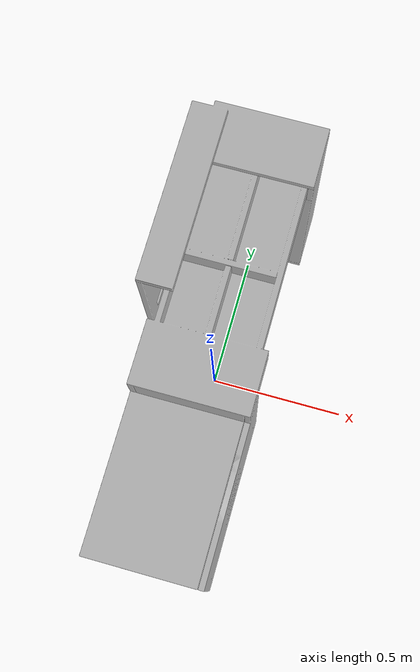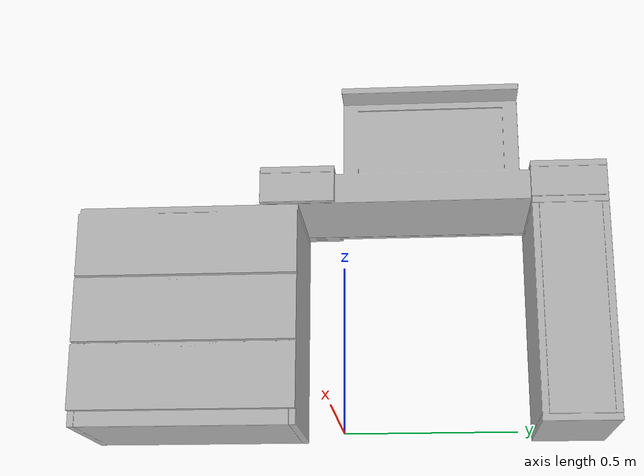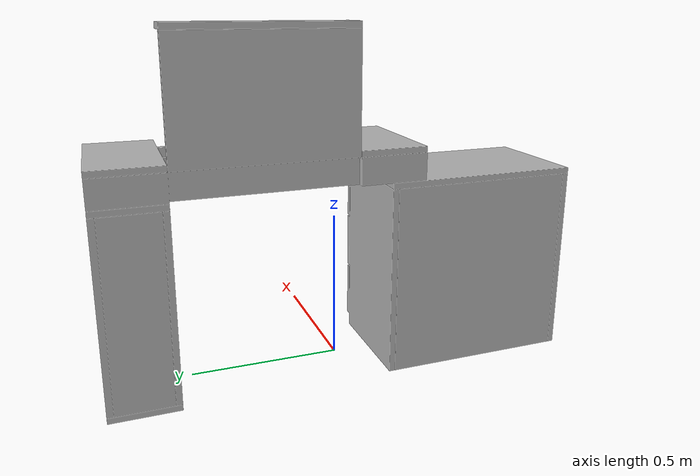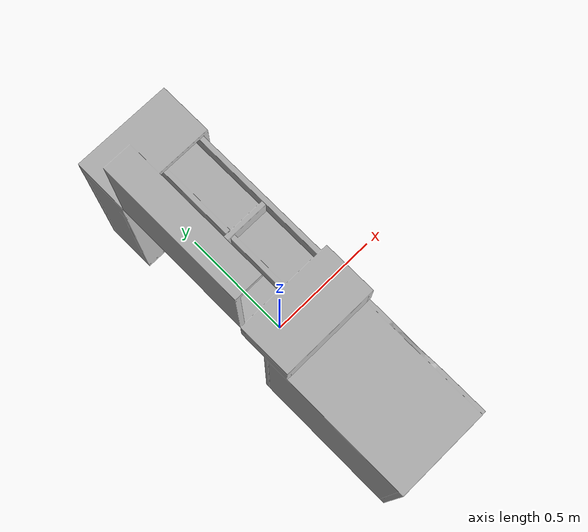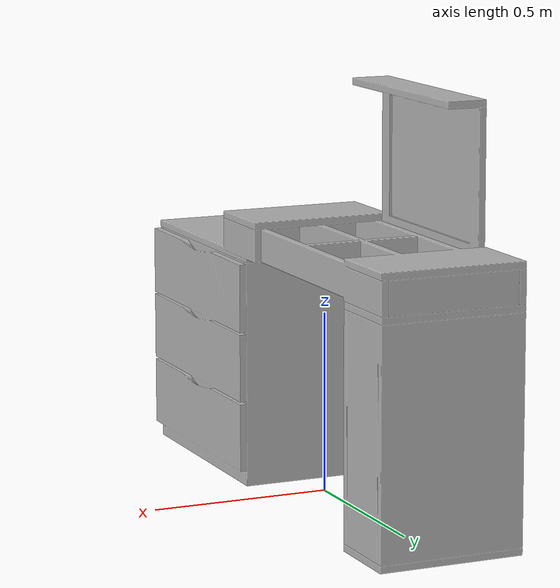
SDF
<?xml version='1.0'?>
<sdf version='1.4'>
  <model name='200'>
    <pose>0 0 0 0 0 0</pose>
    <static>true</static>
    <link name='link'>
      <collision name='collision'>
        <pose>0 0 0 0 0 0</pose>
        <geometry>
          <box>
            <size>0.401018 1.55 2</size>
          </box>
        </geometry>
      </collision>
      <visual name='visual'>
        <pose>0 0 0 0 0 0</pose>
        <geometry>
          <mesh><uri>model://200/200.dae</uri></mesh>
        </geometry>
      </visual>
    </link>
  </model>
</sdf>
